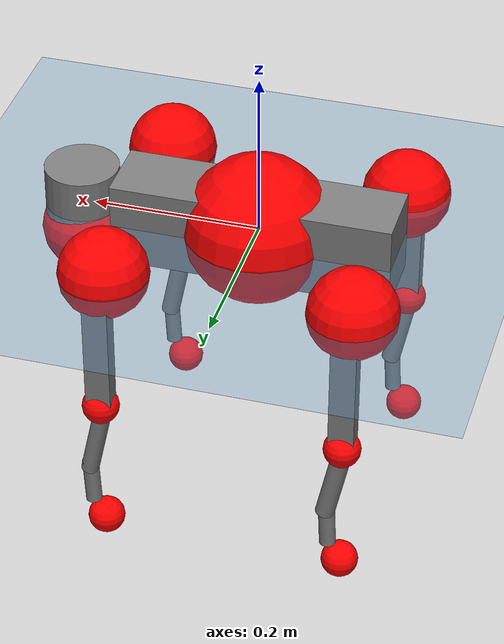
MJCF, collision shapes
<mujoco model="go2">
  <compiler angle="radian" assetdir="assets" balanceinertia="true" inertiafromgeom="false"/>

  <option timestep="0.005" density="1.2" viscosity="2e-05"/>

  <size nkey="1"/>

  <visual>
    <quality shadowsize="8192"/>
    <map shadowclip="0.5"/>
  </visual>

  <default>
    <default class="/">
      <geom contype="0" conaffinity="0" group="1" solref="-1000 -80"/>
      <site size="0.01 0.005 0.005" group="5"/>
      <general forcelimited="true" biastype="affine" gainprm="20" biasprm="0 -20 -0.5"/>
      <default class="go2">
        <joint armature="0.01" damping="0.01" frictionloss="0.2"/>
        <geom condim="1" margin="0.001"/>
        <default class="visual">
          <geom type="mesh" group="2"/>
        </default>
        <default class="collision">
          <geom group="3"/>
          <default class="foot">
            <geom size="0.022 0 0" condim="6" priority="1" friction="0.8 0.02 0.01" solimp="0.015 1 0.022"/>
          </default>
        </default>
        <default class="reward_collision_sphere">
          <geom group="5" rgba="1 0 0 1"/>
        </default>
      </default>
    </default>
  </default>

  <asset>
    <texture type="skybox" colorspace="auto" name="//unnamed_texture_0" builtin="gradient" rgb1="0.95 0.95 0.95" rgb2="0.95 0.95 0.95" width="100" height="600"/>
    <texture type="2d" colorspace="auto" name="texplane" builtin="checker" rgb1="0.345 0.575 0.748" rgb2="0.345 0.575 0.748" markrgb="1 1 1" width="512" height="512"/>
    <material name="MatPlane" class="/" texture="texplane" texuniform="true" texrepeat="2 2" specular="0.9"/>
    <material name="metal" class="/" rgba="0.9 0.95 0.95 1"/>
    <material name="black" class="/" rgba="0 0 0 1"/>
    <material name="white" class="/"/>
    <material name="gray" class="/" rgba="0.671705 0.692426 0.77427 1"/>
    <mesh name="base_0" class="/" file="base_0.obj"/>
    <mesh name="base_1" class="/" file="base_1.obj"/>
    <mesh name="base_2" class="/" file="base_2.obj"/>
    <mesh name="base_3" class="/" file="base_3.obj"/>
    <mesh name="base_4" class="/" file="base_4.obj"/>
    <mesh name="hip_0" class="/" file="hip_0.obj"/>
    <mesh name="hip_1" class="/" file="hip_1.obj"/>
    <mesh name="thigh_0" class="/" file="thigh_0.obj"/>
    <mesh name="thigh_1" class="/" file="thigh_1.obj"/>
    <mesh name="thigh_mirror_0" class="/" file="thigh_mirror_0.obj"/>
    <mesh name="thigh_mirror_1" class="/" file="thigh_mirror_1.obj"/>
    <mesh name="calf_0" class="/" file="calf_0.obj"/>
    <mesh name="calf_1" class="/" file="calf_1.obj"/>
    <mesh name="calf_mirror_0" class="/" file="calf_mirror_0.obj"/>
    <mesh name="calf_mirror_1" class="/" file="calf_mirror_1.obj"/>
    <mesh name="foot" class="/" file="foot.obj"/>
  </asset>

  <worldbody>
    <geom name="floor" class="/" size="100 100 0.125" type="plane" group="0" material="MatPlane"/>
    <light name="toplight_shadow" class="/" pos="0 0 5" dir="0.0990148 0.0990148 -0.990148" type="directional" ambient="0.04 0.04 0.04" diffuse="0.55 0.55 0.55" specular="0.12 0.12 0.12"/>
    <light name="toplight_fill" class="/" pos="0 0 5" dir="0.0990148 0.0990148 -0.990148" type="directional" castshadow="false" ambient="0.04 0.04 0.04" diffuse="0.3 0.3 0.3" specular="0.08 0.08 0.08"/>
    <body name="trunk" childclass="go2" pos="0.000536751 -0.000247196 0.00114232" quat="1 -0.000109287 7.90498e-05 -0.000127333">
      <inertial pos="0.0162862 0.000650324 -0.004071" quat="-0.000452689 0.713766 -0.0017237 0.700382" mass="4.6779" diaginertia="0.0252026 0.168831 0.00741442"/>
      <joint name="//unnamed_joint_0" type="free" armature="0" damping="0" frictionloss="0"/>
      <geom name="//unnamed_geom_1" class="visual" material="black" mesh="base_0"/>
      <geom name="//unnamed_geom_2" class="visual" material="black" mesh="base_1"/>
      <geom name="//unnamed_geom_3" class="visual" material="black" mesh="base_2"/>
      <geom name="//unnamed_geom_4" class="visual" material="white" mesh="base_3"/>
      <geom name="//unnamed_geom_5" class="visual" material="gray" mesh="base_4"/>
      <geom name="trunk_1" class="collision" size="0.16738 0.0416002 0.0507211" type="box"/>
      <geom name="trunk_2" class="collision" size="0.0444922 0.040043" pos="0.214531 0 0.00792719" type="cylinder"/>
      <geom name="trunk_3" class="collision" size="0.0418227" pos="0.220553 0 -0.0475632"/>
      <geom name="//unnamed_geom_9" class="reward_collision_sphere" size="0.0889844"/>
      <geom name="//unnamed_geom_10" class="reward_collision_sphere" size="0.0533906" pos="0.210767 0 -0.0356724"/>
      <site name="imu" pos="-0.0117519 0.01215 0.027317" size="0.00889844"/>
      <camera name="track" pos="0 -2.24815 0" quat="0.707107 0.707107 0 0" mode="trackcom"/>
      <camera name="ego_camera" pos="0.234855 0 0.0356724" quat="-0.5 -0.5 0.5 0.5"/>
      <body name="FL_hip" pos="0.144322 0.0561963 0.000895286" quat="1 -6.94707e-05 4.79746e-05 2.60649e-05">
        <inertial pos="-0.00417005 0.00118012 0.00153194" quat="0.496762 0.503087 0.503025 0.497089" mass="0.46084" diaginertia="0.000211134 0.00100552 0.000146094"/>
        <joint name="FL_hip_joint" pos="0 0 0" axis="0.999982 -0.00520218 -0.00312848" range="-1.04854 1.10108" armature="0.00884653" damping="0.000580058" frictionloss="0.201339"/>
        <geom name="//unnamed_geom_11" class="visual" material="metal" mesh="hip_0"/>
        <geom name="//unnamed_geom_12" class="visual" material="gray" mesh="hip_1"/>
        <geom name="//unnamed_geom_13" class="collision" size="0.0409328 0.0177969" pos="0 0.0899258 0" quat="0.707107 0.707107 0 0" type="cylinder"/>
        <geom name="//unnamed_geom_14" class="reward_collision_sphere" size="0.0533906" pos="0 0.0786851 0"/>
        <body name="FL_thigh" pos="-0.00128671 0.110249 -0.00103412" quat="1 -0.000200167 -2.25492e-05 2.52172e-05">
          <inertial pos="-0.00412534 -0.025514 -0.0249661" quat="0.830321 0.0970325 -0.0198172 0.548415" mass="0.827095" diaginertia="0.00146022 0.0104488 0.000270181"/>
          <joint name="FL_thigh_joint" pos="0 0 0" axis="0.00679369 0.999976 -0.000950081" stiffness="0.00163065" range="-1.61919 3.50354" armature="0.00824588" damping="0.0151127" frictionloss="0.177636"/>
          <geom name="//unnamed_geom_15" class="visual" material="metal" mesh="thigh_0"/>
          <geom name="//unnamed_geom_16" class="visual" material="gray" mesh="thigh_1"/>
          <geom name="//unnamed_geom_17" class="collision" size="0.0947684 0.0109006 0.0151273" pos="0 0 -0.0844246" quat="0.707107 0 0.707107 0" type="box"/>
          <body name="FL_calf" pos="0.000978398 -0.00211712 -0.169777" quat="1 -2.17386e-05 -3.94156e-06 1.54407e-05">
            <inertial pos="0.00680261 -0.000105468 -0.110166" quat="0.708944 -0.00158588 -0.00506572 0.705245" mass="0.170815" diaginertia="0.00036512 0.00265849 1.68971e-05"/>
            <joint name="FL_calf_joint" pos="0 0 0" axis="0.00480567 0.999976 -0.004958" range="-2.68444 -0.7881" armature="0.00802415" damping="0" frictionloss="0.165083"/>
            <geom name="//unnamed_geom_18" class="visual" material="gray" mesh="calf_0"/>
            <geom name="//unnamed_geom_19" class="visual" material="black" mesh="calf_1"/>
            <geom name="FL_calf0" class="collision" size="0.0106781 0.0533906" pos="0.00602192 0 -0.0475632" quat="0.994493 0 -0.104807 0" type="cylinder"/>
            <geom name="//unnamed_geom_21" class="collision" size="0.00978828 0.0289199" pos="0.0150548 0 -0.117322" quat="0.999688 0 0.0249974 0" type="cylinder"/>
            <geom name="//unnamed_geom_22" class="visual" pos="0 0 -0.168849" quat="1 0 0 0" material="black" mesh="foot"/>
            <geom name="FL_foot" class="foot" size="0.0164864" pos="-0.00150548 0 -0.168849"/>
            <geom name="//unnamed_geom_24" class="reward_collision_sphere" size="0.0222461"/>
            <geom name="//unnamed_geom_25" class="reward_collision_sphere" size="0.0222461" pos="-0.00150548 0 -0.168849"/>
            <site name="FL_foot" class="foot" pos="-0.00150548 0 -0.168849" size="0.00889844"/>
          </body>
        </body>
      </body>
      <body name="FR_hip" pos="0.144317 -0.0525032 0.00290341" quat="1 -9.86309e-05 0.000708583 8.01584e-05">
        <inertial pos="-0.00633594 -0.00254303 -0.00178948" quat="0.496857 0.509132 0.501581 0.492275" mass="0.455121" diaginertia="0.000210344 0.00104843 0.000146934"/>
        <joint name="FR_hip_joint" pos="0 0 0" axis="0.999925 0.00712179 -0.00998968" stiffness="0.00280351" range="-1.02898 0.996468" armature="0.00976299" damping="0.000412326" frictionloss="0.197061"/>
        <geom name="//unnamed_geom_26" class="visual" pos="0 2.88662e-09 1.23813e-07" quat="4.63268e-05 1 0 0" material="metal" mesh="hip_0"/>
        <geom name="//unnamed_geom_27" class="visual" pos="0 4.67955e-09 -3.06237e-07" quat="4.63268e-05 1 0 0" material="gray" mesh="hip_1"/>
        <geom name="//unnamed_geom_28" class="collision" size="0.0409328 0.0177969" pos="0 -0.0899258 0" quat="0.707107 0.707107 0 0" type="cylinder"/>
        <geom name="//unnamed_geom_29" class="reward_collision_sphere" size="0.0533906" pos="0 -0.0786851 0"/>
        <body name="FR_thigh" pos="0.000450751 -0.10969 -0.00375386" quat="0.999999 -0.00115925 -0.000456747 0.000556159">
          <inertial pos="-0.00491229 0.023986 -0.02889" quat="0.54809 -0.0289573 0.0785248 0.832221" mass="0.820989" diaginertia="0.00141402 0.0102972 0.000283088"/>
          <joint name="FR_thigh_joint" pos="0 0 0" axis="-0.000348279 -1 0.000349959" stiffness="0.00190711" range="-3.48993 1.51985" armature="0.00755071" damping="0.0221149" frictionloss="0.16762"/>
          <geom name="//unnamed_geom_30" class="visual" material="metal" mesh="thigh_mirror_0"/>
          <geom name="//unnamed_geom_31" class="visual" material="gray" mesh="thigh_mirror_1"/>
          <geom name="//unnamed_geom_32" class="collision" size="0.0947684 0.0109006 0.0151273" pos="0 0 -0.0844246" quat="0.707107 0 0.707107 0" type="box"/>
          <body name="FR_calf" pos="0.000239517 -0.00057888 -0.169983" quat="1 0.000819073 7.5251e-05 -5.8842e-05">
            <inertial pos="0.00260105 0.000869441 -0.111378" quat="0.700234 -0.00664762 -0.00534203 0.713863" mass="0.168232" diaginertia="0.000363703 0.00264424 1.62192e-05"/>
            <joint name="FR_calf_joint" pos="0 0 0" axis="0.00578439 -0.999978 0.00327895" range="0.854758 2.72" armature="0.00900239" damping="0.00306626" frictionloss="0.153896"/>
            <geom name="//unnamed_geom_33" class="visual" material="gray" mesh="calf_mirror_0"/>
            <geom name="//unnamed_geom_34" class="visual" material="black" mesh="calf_mirror_1"/>
            <geom name="FR_calf0" class="collision" size="0.011568 0.0533906" pos="0.00752739 0 -0.0475632" quat="0.995004 0 -0.0998334 0" type="cylinder"/>
            <geom name="//unnamed_geom_36" class="collision" size="0.00978828 0.0289199" pos="0.0150548 0 -0.117322" quat="0.999688 0 0.0249974 0" type="cylinder"/>
            <geom name="//unnamed_geom_37" class="visual" pos="0 0 -0.168849" quat="1 0 0 0" material="black" mesh="foot"/>
            <geom name="FR_foot" class="foot" size="0.0210128" pos="-0.00150548 0 -0.168849"/>
            <geom name="//unnamed_geom_39" class="reward_collision_sphere" size="0.0222461"/>
            <geom name="//unnamed_geom_40" class="reward_collision_sphere" size="0.0222461" pos="-0.00150548 0 -0.168849"/>
            <site name="FR_foot" class="foot" pos="-0.00150548 0 -0.168849" size="0.00889844"/>
          </body>
        </body>
      </body>
      <body name="RL_hip" pos="-0.145673 0.0503992 -0.00110852" quat="0.999999 -0.000103478 -0.00131669 -0.000482029">
        <inertial pos="0.00166292 0.00217792 0.00114207" quat="0.497027 0.493133 0.503001 0.506729" mass="0.461777" diaginertia="0.000200074 0.00107261 0.000143226"/>
        <joint name="RL_hip_joint" pos="0 0 0" axis="-0.999989 0.000328749 0.00463677" stiffness="0.00249564" range="-1.05507 1.04248" armature="0.00920187" damping="0.0151237" frictionloss="0.175276"/>
        <geom name="//unnamed_geom_41" class="visual" pos="3.48289e-10 0 6.82727e-08" quat="4.63268e-05 0 1 0" material="metal" mesh="hip_0"/>
        <geom name="//unnamed_geom_42" class="visual" pos="5.64618e-10 0 6.05481e-08" quat="4.63268e-05 0 1 0" material="gray" mesh="hip_1"/>
        <geom name="//unnamed_geom_43" class="collision" size="0.0409328 0.0177969" pos="0 0.0899258 0" quat="0.707107 0.707107 0 0" type="cylinder"/>
        <geom name="//unnamed_geom_44" class="reward_collision_sphere" size="0.0533906" pos="0 0.0786851 0"/>
        <body name="RL_thigh" pos="0.000224926 0.107015 -0.00352195" quat="1 8.94446e-05 -0.000826508 0.00013062">
          <inertial pos="-0.00452212 -0.0265483 -0.0244165" quat="0.829538 0.0846485 -0.0196215 0.551649" mass="0.797726" diaginertia="0.00139255 0.0103096 0.000274114"/>
          <joint name="RL_thigh_joint" pos="0 0 0" axis="-0.00877818 0.999953 0.00403406" stiffness="0.0114178" range="-0.565546 4.52534" armature="0.00844964" damping="0.0228266" frictionloss="0.2026"/>
          <geom name="//unnamed_geom_45" class="visual" material="metal" mesh="thigh_0"/>
          <geom name="//unnamed_geom_46" class="visual" material="gray" mesh="thigh_1"/>
          <geom name="//unnamed_geom_47" class="collision" size="0.0947684 0.0109006 0.0151273" pos="0 0 -0.0844246" quat="0.707107 0 0.707107 0" type="box"/>
          <body name="RL_calf" pos="-0.000316874 0.00172429 -0.169172" quat="1 0.000339902 -0.000461415 7.78504e-06">
            <inertial pos="0.00562566 0.00117779 -0.1105" quat="0.71079 0.00164608 -0.00447066 0.703388" mass="0.164758" diaginertia="0.000354358 0.00248395 1.68343e-05"/>
            <joint name="RL_calf_joint" pos="0 0 0" axis="-0.00759447 0.999919 0.0101855" range="-2.70263 -0.795589" armature="0.0088064" damping="0.0150539" frictionloss="0.174993"/>
            <geom name="//unnamed_geom_48" class="visual" material="gray" mesh="calf_0"/>
            <geom name="//unnamed_geom_49" class="visual" material="black" mesh="calf_1"/>
            <geom name="RL_calf0" class="collision" size="0.011568 0.0533906" pos="0.00752739 0 -0.0475632" quat="0.995004 0 -0.0998334 0" type="cylinder"/>
            <geom name="//unnamed_geom_51" class="collision" size="0.00978828 0.0289199" pos="0.0150548 0 -0.117322" quat="0.999688 0 0.0249974 0" type="cylinder"/>
            <geom name="//unnamed_geom_52" class="visual" pos="0 0 -0.168849" quat="1 0 0 0" material="black" mesh="foot"/>
            <geom name="RL_foot" class="foot" size="0.0211789" pos="-0.00150548 0 -0.168849"/>
            <geom name="//unnamed_geom_54" class="reward_collision_sphere" size="0.0222461"/>
            <geom name="//unnamed_geom_55" class="reward_collision_sphere" size="0.0222461" pos="-0.00150548 0 -0.168849"/>
            <site name="RL_foot" class="foot" pos="-0.00150548 0 -0.168849" size="0.00889844"/>
          </body>
        </body>
      </body>
      <body name="RR_hip" pos="-0.147239 -0.050998 -0.00962036" quat="1 0.000222788 -0.000490704 -0.000150675">
        <inertial pos="0.00290877 -0.00428997 0.00142169" quat="0.499499 0.496282 0.498267 0.5059" mass="0.483388" diaginertia="0.000209007 0.00104149 0.000152909"/>
        <joint name="RR_hip_joint" pos="0 0 0" axis="-0.999955 -0.00395418 -0.00866678" range="-1.10067 1.0491" armature="0.00882243" damping="9.46558e-05" frictionloss="0.161737"/>
        <geom name="//unnamed_geom_56" class="visual" pos="-3.35433e-10 2.88662e-09 -5.55402e-08" quat="2.14617e-09 4.63268e-05 4.63268e-05 -1" material="metal" mesh="hip_0"/>
        <geom name="//unnamed_geom_57" class="visual" pos="-5.96416e-10 4.67955e-09 3.66785e-07" quat="2.14617e-09 4.63268e-05 4.63268e-05 -1" material="gray" mesh="hip_1"/>
        <geom name="//unnamed_geom_58" class="collision" size="0.0409328 0.0177969" pos="0 -0.0899258 0" quat="0.707107 0.707107 0 0" type="cylinder"/>
        <geom name="//unnamed_geom_59" class="reward_collision_sphere" size="0.0533906" pos="0 -0.0786851 0"/>
        <body name="RR_thigh" pos="-0.0021563 -0.105639 -0.00186504" quat="1 -0.000659572 -0.00070492 -6.34019e-05">
          <inertial pos="-0.00149837 0.0223371 -0.0239465" quat="0.548812 -0.0148918 0.0767913 0.832278" mass="0.802004" diaginertia="0.00140161 0.0102394 0.000273025"/>
          <joint name="RR_thigh_joint" pos="0 0 0" axis="0.0174606 -0.999812 -0.00843286" range="-4.53924 0.496791" armature="0.00862916" damping="0" frictionloss="0.158085"/>
          <geom name="//unnamed_geom_60" class="visual" material="metal" mesh="thigh_mirror_0"/>
          <geom name="//unnamed_geom_61" class="visual" material="gray" mesh="thigh_mirror_1"/>
          <geom name="//unnamed_geom_62" class="collision" size="0.0947684 0.0109006 0.0151273" pos="0 0 -0.0844246" quat="0.707107 0 0.707107 0" type="box"/>
          <body name="RR_calf" pos="-0.000364741 0.000639074 -0.169278" quat="0.999999 0.000281164 0.000509615 0.000839255">
            <inertial pos="0.00695113 -4.17041e-05 -0.11115" quat="0.703646 -0.0038595 0.00198407 0.710537" mass="0.171635" diaginertia="0.000365458 0.00279154 1.72091e-05"/>
            <joint name="RR_calf_joint" pos="0 0 0" axis="-0.00453351 -0.999978 0.00475611" range="0.844199 2.68107" armature="0.00870939" damping="0.0128817" frictionloss="0.1571"/>
            <geom name="//unnamed_geom_63" class="visual" material="gray" mesh="calf_mirror_0"/>
            <geom name="//unnamed_geom_64" class="visual" material="black" mesh="calf_mirror_1"/>
            <geom name="RR_calf0" class="collision" size="0.011568 0.0533906" pos="0.00752739 0 -0.0475632" quat="0.995004 0 -0.0998334 0" type="cylinder"/>
            <geom name="//unnamed_geom_66" class="collision" size="0.00978828 0.0289199" pos="0.0150548 0 -0.117322" quat="0.999688 0 0.0249974 0" type="cylinder"/>
            <geom name="//unnamed_geom_67" class="visual" pos="0 0 -0.168849" quat="1 0 0 0" material="black" mesh="foot"/>
            <geom name="RR_foot" class="foot" size="0.0198245" pos="-0.00150548 0 -0.168849"/>
            <geom name="//unnamed_geom_69" class="reward_collision_sphere" size="0.0222461"/>
            <geom name="//unnamed_geom_70" class="reward_collision_sphere" size="0.0222461" pos="-0.00150548 0 -0.168849"/>
            <site name="RR_foot" class="foot" pos="-0.00150548 0 -0.168849" size="0.00889844"/>
          </body>
        </body>
      </body>
    </body>
  </worldbody>

  <contact>
    <pair class="/" geom1="floor" geom2="FL_foot" name="//unnamed_contact_0"/>
    <pair class="/" geom1="floor" geom2="FR_foot" name="//unnamed_contact_1"/>
    <pair class="/" geom1="floor" geom2="RL_foot" name="//unnamed_contact_2"/>
    <pair class="/" geom1="floor" geom2="RR_foot" name="//unnamed_contact_3"/>
  </contact>

  <actuator>
    <general name="FL_hip" class="/" joint="FL_hip_joint" forcerange="-21.9154 21.9154" gainprm="18.6807" biasprm="0 -18.6807 -0.416534"/>
    <general name="FL_thigh" class="/" joint="FL_thigh_joint" forcerange="-22.1769 22.1769" gainprm="18.6807" biasprm="0 -18.6807 -0.416534"/>
    <general name="FL_calf" class="/" joint="FL_calf_joint" forcerange="-44.21 44.21" gainprm="18.6807" biasprm="0 -18.6807 -0.416534"/>
    <general name="FR_hip" class="/" joint="FR_hip_joint" forcerange="-20.1051 20.1051" gainprm="18.6807" biasprm="0 -18.6807 -0.416534"/>
    <general name="FR_thigh" class="/" joint="FR_thigh_joint" forcerange="-23.0768 23.0768" gainprm="18.6807" biasprm="0 -18.6807 -0.416534"/>
    <general name="FR_calf" class="/" joint="FR_calf_joint" forcerange="-40.9655 40.9655" gainprm="18.6807" biasprm="0 -18.6807 -0.416534"/>
    <general name="RL_hip" class="/" joint="RL_hip_joint" forcerange="-21.5741 21.5741" gainprm="18.6807" biasprm="0 -18.6807 -0.416534"/>
    <general name="RL_thigh" class="/" joint="RL_thigh_joint" forcerange="-21.9136 21.9136" gainprm="18.6807" biasprm="0 -18.6807 -0.416534"/>
    <general name="RL_calf" class="/" joint="RL_calf_joint" forcerange="-40.6164 40.6164" gainprm="18.6807" biasprm="0 -18.6807 -0.416534"/>
    <general name="RR_hip" class="/" joint="RR_hip_joint" forcerange="-21.0956 21.0956" gainprm="18.6807" biasprm="0 -18.6807 -0.416534"/>
    <general name="RR_thigh" class="/" joint="RR_thigh_joint" forcerange="-18.9556 18.9556" gainprm="18.6807" biasprm="0 -18.6807 -0.416534"/>
    <general name="RR_calf" class="/" joint="RR_calf_joint" forcerange="-44.0234 44.0234" gainprm="18.6807" biasprm="0 -18.6807 -0.416534"/>
  </actuator>

  <sensor>
    <gyro site="imu" name="imu_angular_velocity"/>
    <velocimeter site="imu" name="imu_linear_velocity"/>
    <framelinvel objtype="site" objname="FL_foot" name="FL_foot_global_linear_velocity"/>
    <framelinvel objtype="site" objname="FR_foot" name="FR_foot_global_linear_velocity"/>
    <framelinvel objtype="site" objname="RL_foot" name="RL_foot_global_linear_velocity"/>
    <framelinvel objtype="site" objname="RR_foot" name="RR_foot_global_linear_velocity"/>
  </sensor>

  <keyframe>
    <key name="home" qpos="0 0 0.325 1 0 0 0 0.1 0.8 -1.5 -0.1 -0.8 1.5 -0.1 0.8 -1.5 0.1 -0.8 1.5"/>
  </keyframe>
</mujoco>
